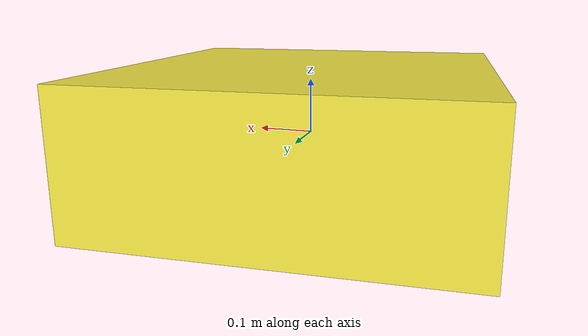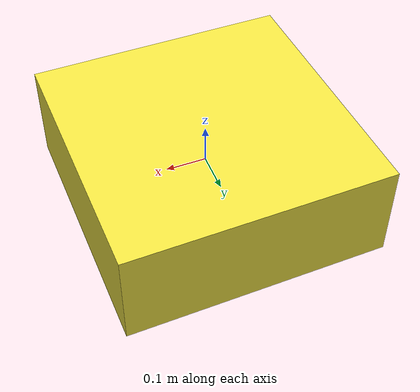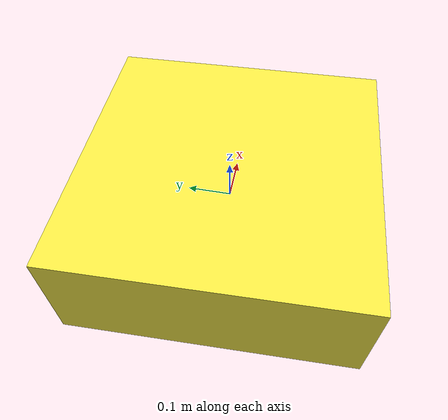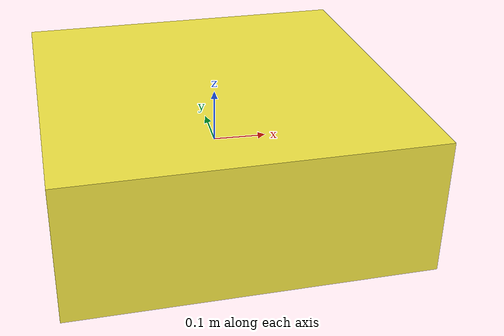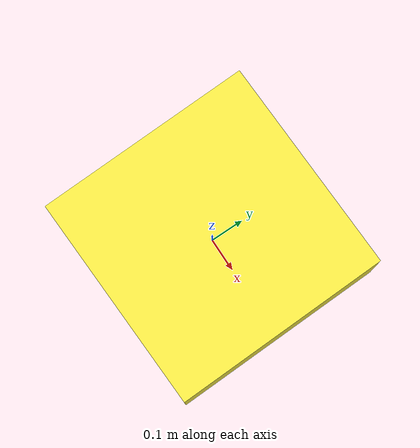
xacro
<?xml version="1.0"?>
<robot xmlns:xacro="http://www.ros.org/wiki/xacro" name="isaac_twin">
    <xacro:arg name="initial_positions_file" default="initial_positions.yaml" />

    <!-- Import isaac_twin urdf file -->
    <xacro:include filename="$(find isaac_sim_demo)/urdf/4_drones.urdf" />

    <!-- Import control_xacro -->
    <xacro:include filename="isaac_twin.ros2_control.xacro" />

    <xacro:isaac_twin_ros2_control name="FakeSystem" initial_positions_file="$(arg initial_positions_file)"/>

</robot>

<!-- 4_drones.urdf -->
<!-- |    This document was autogenerated by xacro from 4_drones.xacro                 | -->
<!-- |    EDITING THIS FILE BY HAND IS NOT RECOMMENDED                                 | -->
<robot name="isaac_twin">
  <link name="base_link">
    <visual>
      <geometry>
        <box size="0.01 0.01 0"/>
      </geometry>
    </visual>
  </link>
  <link name="spherical_1_x">
    <inertial>
      <mass value="0.1"/>
      <origin rpy="0 0 0" xyz="0 0 0.05"/>
      <inertia ixx="0.0001666666666666667" ixy="0" ixz="0" iyy="0.0001666666666666667" iyz="0" izz="0.0001666666666666667"/>
    </inertial>
    <visual>
      <origin rpy="0 0 0" xyz="0 0 0.05"/>
      <geometry>
        <box size="0.01 0.01 0"/>
      </geometry>
    </visual>
  </link>
  <link name="spherical_1_y">
    <inertial>
      <mass value="0.1"/>
      <origin rpy="0 0 0" xyz="0 0 0.05"/>
      <inertia ixx="0.0001666666666666667" ixy="0" ixz="0" iyy="0.0001666666666666667" iyz="0" izz="0.0001666666666666667"/>
    </inertial>
    <visual>
      <origin rpy="0 0 0" xyz="0 0 0.05"/>
      <geometry>
        <box size="0.01 0.01 0"/>
      </geometry>
    </visual>
  </link>
  <joint name="spherical_1_x" type="prismatic">
    <parent link="base_link"/>
    <child link="spherical_1_x"/>
    <origin rpy="0 0 0" xyz="0 0 0.0"/>
    <axis xyz="1 0 0"/>
    <limit effort="10" lower="-4" upper="4" velocity="1.0"/>
  </joint>
  <joint name="spherical_1_y" type="prismatic">
    <parent link="spherical_1_x"/>
    <child link="spherical_1_y"/>
    <origin rpy="0 0 0" xyz="0 0 0"/>
    <limit effort="10" lower="-4" upper="4" velocity="1.0"/>

    <axis xyz="0 1 0"/>
  </joint>
  <joint name="spherical_1_z" type="prismatic">
    <parent link="spherical_1_y"/>
    <child link="Drone1"/>
    <origin rpy="0 0 -1.5354" xyz="0 0 0"/>
    <limit effort="10" lower="-4" upper="4" velocity="1.0"/>
    <axis xyz="0 0 1"/>
  </joint>

  <link name="Drone1">
    <inertial>
      <mass value="0.1"/>
      <origin rpy="0 0 0" xyz="0 0 0"/>
      <inertia ixx="0.0008333333333333334" ixy="0" ixz="0" iyy="0.0008333333333333334" iyz="0" izz="0.0015"/>
    </inertial>
    <collision>
      <origin rpy="0 0 0" xyz="0 0 0"/>
      <geometry>
        <box size="0.65 0.65 0.25"/>
      </geometry>
    </collision>
    <visual>
      <origin rpy="0 0 0" xyz="0 0 0"/>
      <geometry>
        <box size="0.65 0.65 0.25"/>
      </geometry>
    </visual>
  </link>
  <link name="spherical_2_x">
    <inertial>
      <mass value="0.1"/>
      <origin rpy="0 0 0" xyz="0 0 0"/>
      <inertia ixx="0.0001666666666666667" ixy="0" ixz="0" iyy="0.0001666666666666667" iyz="0" izz="0.0001666666666666667"/>
    </inertial>
    <visual>
      <origin rpy="0 0 0" xyz="0 0 0"/>
      <geometry>
        <box size="0.01 0.01 0"/>
      </geometry>
    </visual>
  </link>
  <link name="spherical_2_y">
    <inertial>
      <mass value="0.1"/>
      <origin rpy="0 0 0" xyz="0 0 0"/>
      <inertia ixx="0.0001666666666666667" ixy="0" ixz="0" iyy="0.0001666666666666667" iyz="0" izz="0.0001666666666666667"/>
    </inertial>
    <visual>
      <origin rpy="0 0 0" xyz="0 0 0"/>
      <geometry>
        <box size="0.01 0.01 0"/>
      </geometry>
    </visual>
  </link>

  <joint name="spherical_2_x" type="prismatic">
    <parent link="Drone1"/>
    <child link="spherical_2_x"/>
    <origin rpy="0 0 0" xyz="0 0 0.0"/>
    <axis xyz="1 0 0"/>
    <limit effort="10" lower="-4" upper="4" velocity="1.0"/>
  </joint>
  <joint name="spherical_2_y" type="prismatic">
    <parent link="spherical_2_x"/>
    <child link="spherical_2_y"/>
    <origin rpy="0 0 0" xyz="0 0 0"/>
    <axis xyz="0 1 0"/>
    <limit effort="10" lower="-4" upper="4" velocity="1.0"/>
  </joint>
  <joint name="spherical_2_z" type="prismatic">
    <parent link="spherical_2_y"/>
    <child link="Drone2"/>
    <origin rpy="0 0 0" xyz="0 0 0"/>
    <axis xyz="0 0 1"/>
    <limit effort="10" lower="-4" upper="4" velocity="1.0"/>
  </joint>

  <link name="Drone2">
    <inertial>
      <mass value="0.1"/>
      <origin rpy="0 0 0" xyz="0 0 0"/>
      <inertia ixx="0.0008333333333333334" ixy="0" ixz="0" iyy="0.0008333333333333334" iyz="0" izz="0.0015"/>
    </inertial>
    <collision>
      <origin rpy="0 0 0" xyz="0 0 0"/>
      <geometry>
        <box size="0.65 0.65 0.25"/>
      </geometry>
    </collision>
    <visual>
      <origin rpy="0 0 0" xyz="0 0 0"/>
      <geometry>
        <box size="0.65 0.65 0.25"/>
      </geometry>
    </visual>
  </link>
  <link name="spherical_3_x">
    <inertial>
      <mass value="0.1"/>
      <origin rpy="0 0 0" xyz="0 0 0"/>
      <inertia ixx="0.0001666666666666667" ixy="0" ixz="0" iyy="0.0001666666666666667" iyz="0" izz="0.0001666666666666667"/>
    </inertial>
    <visual>
      <origin rpy="0 0 0" xyz="0 0 0"/>
      <geometry>
        <box size="0.01 0.01 0"/>
      </geometry>
    </visual>
  </link>
  <link name="spherical_3_y">
    <inertial>
      <mass value="0.1"/>
      <origin rpy="0 0 0" xyz="0 0 0"/>
      <inertia ixx="0.0001666666666666667" ixy="0" ixz="0" iyy="0.0001666666666666667" iyz="0" izz="0.0001666666666666667"/>
    </inertial>
    <visual>
      <origin rpy="0 0 0" xyz="0 0 0"/>
      <geometry>
        <box size="0.01 0.01 0"/>
      </geometry>
    </visual>
  </link>

  <joint name="spherical_3_x" type="prismatic">
    <parent link="Drone2"/>
    <child link="spherical_3_x"/>
    <origin rpy="0 0 0" xyz="0 0 0.0"/>
    <axis xyz="1 0 0"/>
    <limit effort="10" lower="-4" upper="4" velocity="1.0"/>
  </joint>
  <joint name="spherical_3_y" type="prismatic">
    <parent link="spherical_3_x"/>
    <child link="spherical_3_y"/>
    <origin rpy="0 0 0" xyz="0 0 0"/>
    <axis xyz="0 1 0"/>
    <limit effort="10" lower="-4" upper="4" velocity="1.0"/>
  </joint>
  <joint name="spherical_3_z" type="prismatic">
    <parent link="spherical_3_y"/>
    <child link="Drone3"/>
    <origin rpy="0 0 0" xyz="0 0 0"/>
    <limit effort="10" lower="-4" upper="4" velocity="1.0"/>
    <axis xyz="0 0 1"/>
  </joint>
  <link name="Drone3">
    <inertial>
      <mass value="0.1"/>
      <origin rpy="0 0 0" xyz="0 0 0"/>
      <inertia ixx="0.0008333333333333334" ixy="0" ixz="0" iyy="0.0008333333333333334" iyz="0" izz="0.0015"/>
    </inertial>
    <collision>
      <origin rpy="0 0 0" xyz="0 0 0"/>
      <geometry>
        <box size="0.65 0.65 0.25"/>
      </geometry>
    </collision>
    <visual>
      <origin rpy="0 0 0" xyz="0 0 0"/>
      <geometry>
        <box size="0.65 0.65 0.25"/>
      </geometry>
    </visual>
  </link>
  <link name="spherical_4_x">
    <inertial>
      <mass value="0.1"/>
      <origin rpy="0 0 0" xyz="0 0 0"/>
      <inertia ixx="0.0001666666666666667" ixy="0" ixz="0" iyy="0.0001666666666666667" iyz="0" izz="0.0001666666666666667"/>
    </inertial>
    <visual>
      <origin rpy="0 0 0" xyz="0 0 0"/>
      <geometry>
        <box size="0.01 0.01 0"/>
      </geometry>
    </visual>
  </link>
  <link name="spherical_4_y">
    <inertial>
      <mass value="0.1"/>
      <origin rpy="0 0 0" xyz="0 0 0"/>
      <inertia ixx="0.0001666666666666667" ixy="0" ixz="0" iyy="0.0001666666666666667" iyz="0" izz="0.0001666666666666667"/>
    </inertial>
    <visual>
      <origin rpy="0 0 0" xyz="0 0 0"/>
      <geometry>
        <box size="0.01 0.01 0"/>
      </geometry>
    </visual>
  </link>

  <joint name="spherical_4_x" type="prismatic">
    <parent link="Drone3"/>
    <child link="spherical_4_x"/>
    <origin rpy="0 0 0" xyz="0 0 0.0"/>
    <axis xyz="1 0 0"/>
    <limit effort="10" lower="-4" upper="4" velocity="1.0"/>
  </joint>
  <joint name="spherical_4_y" type="prismatic">
    <parent link="spherical_4_x"/>
    <child link="spherical_4_y"/>
    <origin rpy="0 0 0" xyz="0 0 0"/>
    <axis xyz="0 1 0"/>
    <limit effort="10" lower="-4" upper="4" velocity="1.0"/>
  </joint>
  <joint name="spherical_4_z" type="prismatic">
    <parent link="spherical_4_y"/>
    <child link="Drone4"/>
    <origin rpy="0 0 0" xyz="0 0 0"/>
    <axis xyz="0 0 1"/>
    <limit effort="10" lower="-4" upper="4" velocity="1.0"/>
  </joint>

  <link name="Drone4">
    <inertial>
      <mass value="0.1"/>
      <origin rpy="0 0 0" xyz="0 0 0"/>
      <inertia ixx="0.0001666666666666667" ixy="0" ixz="0" iyy="0.0001666666666666667" iyz="0" izz="0.0001666666666666667"/>
    </inertial>
    <collision>
      <origin rpy="0 0 0" xyz="0 0 0"/>
      <geometry>
        <box size="0.65 0.65 0.25"/>
      </geometry>
    </collision>
    <visual>
      <origin rpy="0 0 0" xyz="0 0 0"/>
      <geometry>
        <box size="0.65 0.65 0.25"/>
      </geometry>
    </visual>
  </link>
</robot>
